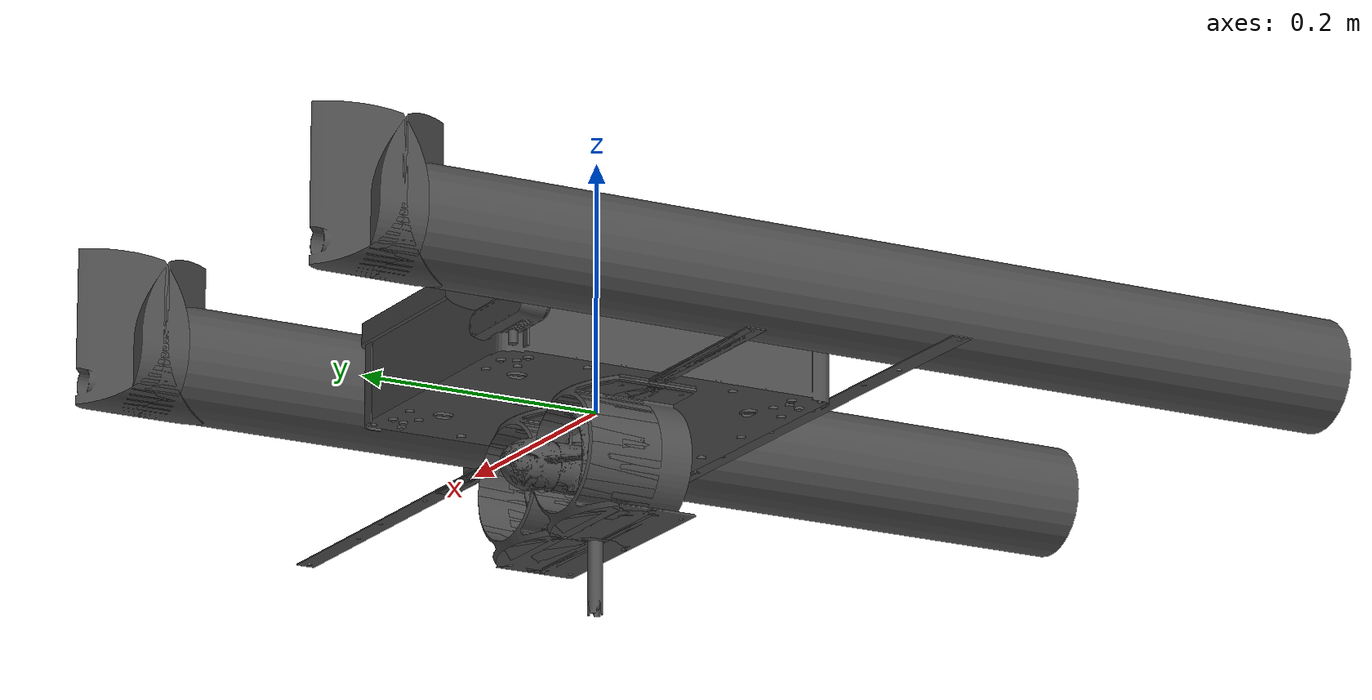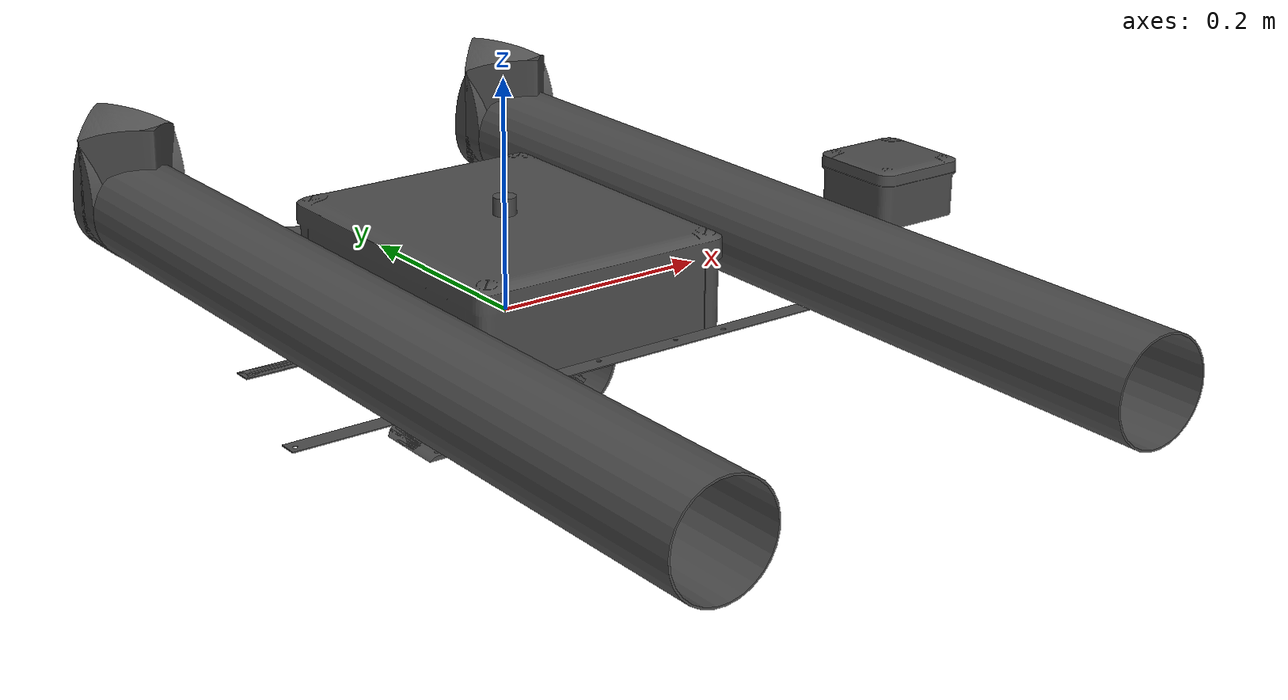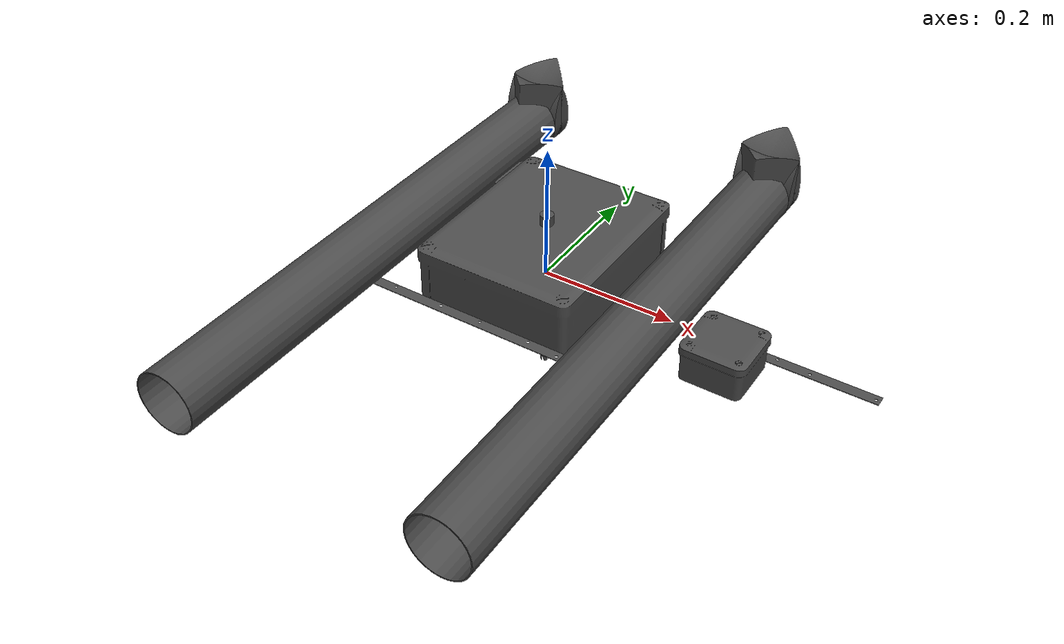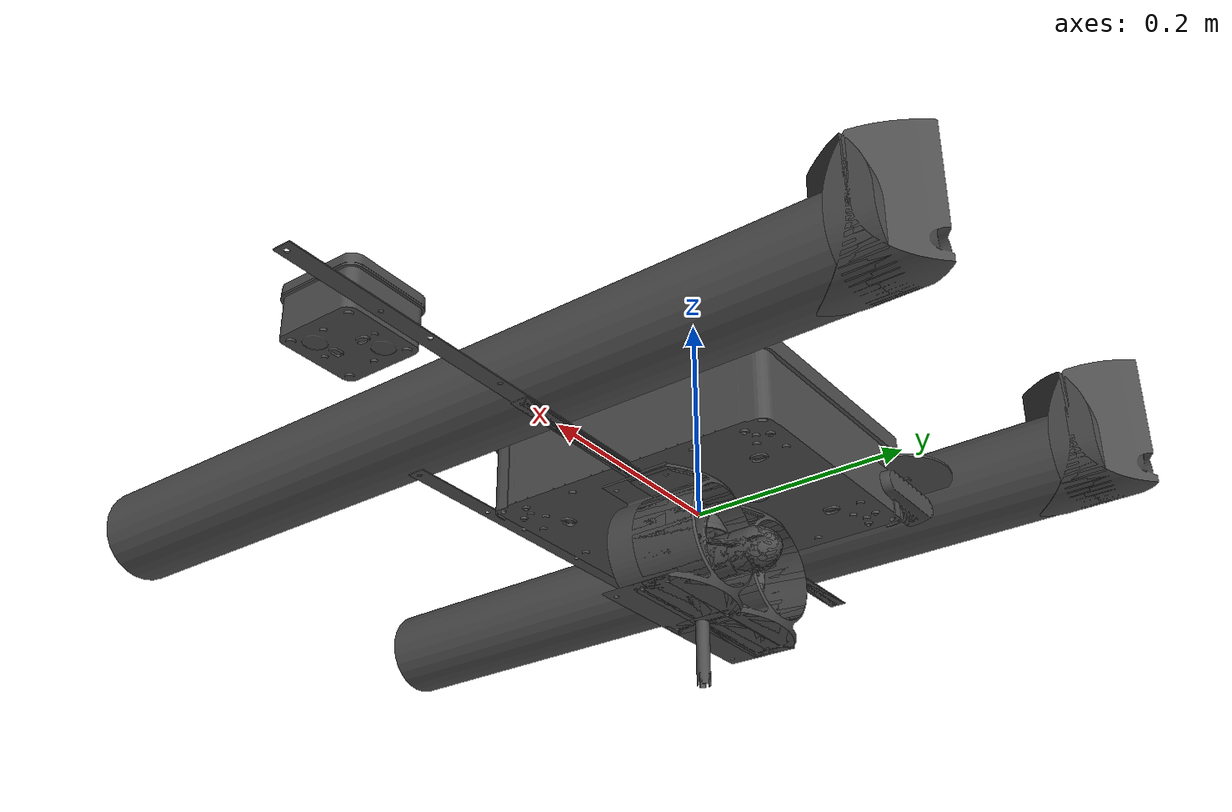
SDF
<sdf version='1.6'>
  <model name='boat_minis'>
    <pose>0 0 0.0 0 0 0</pose>
    <link name='base_link'>
      <inertial>
        <pose >-3.9789257506472566e-11 1.012143865601373e-09 0.04330489141524868 0 0 0</pose>
        <mass>4.78319696007218</mass>
        <inertia>
          <ixx>0.051347</ixx>
          <ixy>0</ixy>
          <ixz>0</ixz>
          <iyy>0.038498</iyy>
          <iyz>0</iyz>
          <izz>0.078462</izz>
        </inertia>
      </inertial>

      <visual name='base_link_visual'>
        <pose>0 0 0.0 0 0 0</pose>
        <geometry>
          <mesh>
            <scale>0.001 0.001 0.001</scale>
            <uri>model://boat_minis/meshes/base_link.stl</uri>
          </mesh>
        </geometry>
        <material>
          <script>
            <name>Gazebo/DarkGrey</name>
            <uri>__default__</uri>
          </script>
        </material>
      </visual>

      <collision name='base_link_collision'>
        <pose>0 0 0.0 0 0 0</pose>
        <geometry>
          <mesh>
            <scale>0.001 0.001 0.001</scale>
            <uri>model://boat_minis/meshes/base_link.stl</uri>
          </mesh>
        </geometry>
      </collision>
    </link>

<link name="v2_support_beam02_1">
  <inertial>
  <pose>2.3447910280083307e-15 -1.473600655507723e-05 -0.0005000000000000247 0 0 0</pose>
    <mass>0.061888018579604125</mass>
  <inertia>
          <ixx>1e-06</ixx>
          <ixy>-0.0</ixy>
          <ixz>-0.0</ixz>
          <iyy>0.001286</iyy>
          <iyz>-0.0</iyz>
          <izz>0.001288</izz>
        </inertia>
  </inertial>
  <visual name="v2_support_beam02_1_visual">
  <pose>0.0 -0.1275 0.0021 0 0 0</pose>
    <geometry>
      <mesh>
          <scale>0.001 0.001 0.001</scale>
          <uri>model://boat_minis/meshes/v2_support_beam02_1.stl</uri>
      </mesh>

    </geometry>
    <material>
          <script>
            <name>Gazebo/DarkGrey</name>
            <uri>__default__</uri>
          </script>
        </material>
  </visual>
  <collision name="v2_support_beam02_1_collision">
  <pose>0.0 -0.1275 0.0021 0 0 0</pose>
    <geometry>
      <mesh>
          <scale>0.001 0.001 0.001</scale>
          <uri>model://boat_minis/meshes/v2_support_beam02_1.stl</uri>
      </mesh>
    </geometry>
  </collision>
</link>

<link name="v2_support_beam04_1">
  <inertial>

   <pose>-2.3447910280083307e-15 1.4736006555132741e-05 -0.0005000000000000156 0 0 0</pose>
   <mass>0.061888018579604125</mass>

  <inertia>
          <ixx>1e-06</ixx>
          <ixy>-0.0</ixy>
          <ixz>-0.0</ixz>
          <iyy>0.001286</iyy>
          <iyz>-0.0</iyz>
          <izz>0.001288</izz>
        </inertia>

  </inertial>
  <visual name="v2_support_beam04_1_visual">
     <pose>0.0 0.1275 0.0021 0 0 0</pose>
    <geometry>
      <mesh>
          <scale>0.001 0.001 0.001</scale>
          <uri>model://boat_minis/meshes/v2_support_beam04_1.stl</uri>
      </mesh>
    </geometry>
     <material>
          <script>
            <name>Gazebo/DarkGrey</name>
            <uri>__default__</uri>
          </script>
        </material>
  </visual>
  <collision name="v2_support_beam04_1_collision">
    <pose>0.0 0.1275 0.0021 0 0 0</pose>
    <geometry>
      <mesh>
          <scale>0.001 0.001 0.001</scale>
          <uri>model://boat_minis/meshes/v2_support_beam04_1.stl</uri>
      </mesh>
    </geometry>
  </collision>
</link>

<link name="floater_support01_2">
  <inertial>

    <pose>-0.04400002005196085 0.02166892426273051 -0.05123833632081263 0 0 0</pose>
     <mass>0.7563645564303094</mass>

  <inertia>
          <ixx>0.001539</ixx>
          <ixy>-0.0</ixy>
          <ixz>-0.0</ixz>
          <iyy>0.002042</iyy>
          <iyz>3e-06</iyz>
          <izz>0.000929</izz>
        </inertia>

  </inertial>
  <visual name="floater_support01_2_visual">

    <pose>-0.243899 -0.1265 0.0031 0 0 0</pose>
    <geometry>
      <mesh>
          <scale>0.001 0.001 0.001</scale>
          <uri>model://boat_minis/meshes/floater_support01_2.stl</uri>
      </mesh>
    </geometry>
     <material>
          <script>
            <name>Gazebo/DarkGrey</name>
            <uri>__default__</uri>
          </script>
        </material>
  </visual>
  <collision name="floater_support01_2_collision">

    <pose>-0.243899 -0.1265 0.0031 0 0 0</pose>
    <geometry>
      <mesh>
          <scale>0.001 0.001 0.001</scale>
          <uri>model://boat_minis/meshes/floater_support01_2.stl</uri>
      </mesh>
    </geometry>
  </collision>
</link>

<link name="floater_support01_1">
  <inertial>
   <pose>0.04400002097690628 0.021668924262728262 -0.05123833632081288 0 0 0</pose>
       <mass>0.7563645564303094</mass>

  <inertia>
          <ixx>0.001539</ixx>
          <ixy>-0.0</ixy>
          <ixz>-0.0</ixz>
          <iyy>0.002042</iyy>
          <iyz>3e-06</iyz>
          <izz>0.000929</izz>
        </inertia>

  </inertial>
  <visual name="floater_support01_1_visual">
    <pose>0.243899 -0.1265 0.0031 0 0 0</pose>
    <geometry>
      <mesh>
          <scale>0.001 0.001 0.001</scale>
          <uri>model://boat_minis/meshes/floater_support01_1.stl</uri>
      </mesh>
    </geometry>
        <material>
          <script>
            <name>Gazebo/DarkGrey</name>
            <uri>__default__</uri>
          </script>
        </material>
  </visual>
  <collision name="floater_support01_1_collision">
    <pose>0.243899 -0.1265 0.0031 0 0 0</pose>
    <geometry>
      <mesh>
          <scale>0.001 0.001 0.001</scale>
          <uri>model://boat_minis/meshes/floater_support01_1.stl</uri>
      </mesh>
    </geometry>
  </collision>
</link>

<link name="floater_support01_3">
  <inertial>
    <pose>0.0440000209769065 -0.004331075498855308 -0.05123833632081256 0 0 0</pose>
         <mass>0.7563645564303094</mass>

  <inertia>
          <ixx>0.001539</ixx>
          <ixy>-0.0</ixy>
          <ixz>-0.0</ixz>
          <iyy>0.002042</iyy>
          <iyz>3e-06</iyz>
          <izz>0.000929</izz>
        </inertia>

  </inertial>
  <visual name="floater_support01_3_visual">
    <pose>0.243899 0.1265 0.0031 0 0 0</pose>
    <geometry>
      <mesh>
          <scale>0.001 0.001 0.001</scale>
          <uri>model://boat_minis/meshes/floater_support01_3.stl</uri>
      </mesh>
    </geometry>
    <material>
          <script>
            <name>Gazebo/DarkGrey</name>
            <uri>__default__</uri>
          </script>
        </material>
  </visual>
  <collision name="floater_support01_3_collision">
    <pose>0.243899 0.1265 0.0031 0 0 0</pose>

    <geometry>
      <mesh>
          <scale>0.001 0.001 0.001</scale>
          <uri>model://boat_minis/meshes/floater_support01_3.stl</uri>
      </mesh>
    </geometry>
  </collision>
</link>

<link name="floater_support01_4">
  <inertial>
<pose>-0.04400002005196085 -0.004331075498853115 -0.05123833632081288 0 0 0</pose>
           <mass>0.7563645564303094</mass>

  <inertia>
          <ixx>0.001539</ixx>
          <ixy>-0.0</ixy>
          <ixz>-0.0</ixz>
          <iyy>0.002042</iyy>
          <iyz>3e-06</iyz>
          <izz>0.000929</izz>
        </inertia>

  </inertial>
  <visual name="floater_support01_4_visual">
    <pose>-0.243899 0.1265 0.0031 0 0 0</pose>
    <geometry>
      <mesh>
          <scale>0.001 0.001 0.001</scale>
          <uri>model://boat_minis/meshes/floater_support01_4.stl</uri>
      </mesh>
    </geometry>
        <material>
          <script>
            <name>Gazebo/DarkGrey</name>
            <uri>__default__</uri>
          </script>
        </material>
  </visual>

  <collision name="floater_support01_4_collision">
    <pose>-0.243899 0.1265 0.0031 0 0 0</pose>
    <geometry>
      <mesh>
          <scale>0.001 0.001 0.001</scale>
          <uri>model://boat_minis/meshes/floater_support01_4.stl</uri>
      </mesh>
    </geometry>
  </collision>
</link>

<link name="v2_support_beam04_2">
  <inertial>
    <pose>0.24389900000000234 0.000985263993444896 0.0004999999999996999 0 0 0</pose>
    <mass>0.061888018579604125</mass>

  <inertia>
          <ixx>1e-06</ixx>
          <ixy>-0.0</ixy>
          <ixz>-0.0</ixz>
          <iyy>0.001286</iyy>
          <iyz>3e-06</iyz>
          <izz>0.001288</izz>
        </inertia>

  </inertial>
  <visual name="v2_support_beam04_2_visual">
    <pose>0.243899 -0.1525 0.0031 0 0 0</pose>
    <geometry>
      <mesh>
          <scale>0.001 0.001 0.001</scale>
          <uri>model://boat_minis/meshes/v2_support_beam04_2.stl</uri>
      </mesh>
    </geometry>
    <material>
          <script>
            <name>Gazebo/DarkGrey</name>
            <uri>__default__</uri>
          </script>
        </material>
  </visual>
  <collision name="v2_support_beam04_2_collision">
    <pose>0.243899 -0.1525 0.0031 0 0 0</pose>
    <geometry>
      <mesh>
          <scale>0.001 0.001 0.001</scale>
          <uri>model://boat_minis/meshes/v2_support_beam04_2.stl</uri>
      </mesh>
    </geometry>
  </collision>
</link>

<link name="guincho_1">
  <inertial>
   <pose>0.3249851174364672 -0.11404013695896392 0.08048686430368082 0 0 0</pose>
      <mass>0.5746024533277414</mass>

  <inertia>
          <ixx>0.00071</ixx>
          <ixy>-2e-06</ixy>
          <ixz>1e-06</ixz>
          <iyy>0.000707</iyy>
          <iyz>2e-06</iyz>
          <izz>0.001004</izz>
        </inertia>

  </inertial>
  <visual name="guincho_1_visual">
    <pose>0.324899 -0.307 0.056856 0 0 0</pose>
    <geometry>
      <mesh>
          <scale>0.001 0.001 0.001</scale>
          <uri>model://boat_minis/meshes/guincho_1.stl</uri>
      </mesh>
    </geometry>
       <material>
          <script>
            <name>Gazebo/DarkGrey</name>
            <uri>__default__</uri>
          </script>
        </material>
  </visual>
  <collision name="guincho_1_collision">
    <pose>0.324899 -0.307 0.056856 0 0 0</pose>
    <geometry>
      <mesh>
          <scale>0.001 0.001 0.001</scale>
          <uri>model://boat_minis/meshes/guincho_1.stl</uri>
      </mesh>
    </geometry>
  </collision>
</link>

<link name="v2_support_beam04_3">
  <inertial>
  <pose>-0.0442499999999973 -0.15060015832347387 0.0036999999999999846 0 0 0</pose>
        <mass>0.061888018579604125</mass>

  <inertia>
          <ixx>1e-06</ixx>
          <ixy>-0.0</ixy>
          <ixz>-0.0</ixz>
          <iyy>0.001286</iyy>
          <iyz>0.0</iyz>
          <izz>0.001288</izz>
        </inertia>

  </inertial>
  <visual name="v2_support_beam04_3_visual">
    <pose>-0.04425 -0.382756 0.0063 0 0 0</pose>
    <geometry>
      <mesh>
          <scale>0.001 0.001 0.001</scale>
          <uri>model://boat_minis/meshes/v2_support_beam04_3.stl</uri>
      </mesh>
    </geometry>
    <material>
          <script>
            <name>Gazebo/DarkGrey</name>
            <uri>__default__</uri>
          </script>
        </material>
  </visual>
  <collision name="v2_support_beam04_3_collision">
    <pose>-0.04425 -0.382756 0.0063 0 0 0</pose>
    <geometry>
      <mesh>
          <scale>0.001 0.001 0.001</scale>
          <uri>model://boat_minis/meshes/v2_support_beam04_3.stl</uri>
      </mesh>
    </geometry>
  </collision>
</link>

<link name="floater_support01_6">
  <inertial>
    <pose>-0.0440000200519636 0.021668501945811686 -0.051238336320810596 0 0 0</pose>
          <mass>0.7563645564303094</mass>

  <inertia>
          <ixx>0.001539</ixx>
          <ixy>-0.0</ixy>
          <ixz>-0.0</ixz>
          <iyy>0.002042</iyy>
          <iyz>3e-06</iyz>
          <izz>0.000929</izz>
        </inertia>

  </inertial>
  <visual name="floater_support01_6_visual">

    <pose>-0.243899 -0.231171 0.0031 0 0 0</pose>
    <geometry>
      <mesh>
          <scale>0.001 0.001 0.001</scale>
          <uri>model://boat_minis/meshes/floater_support01_6.stl</uri>
      </mesh>
    </geometry>
        <material>
          <script>
            <name>Gazebo/DarkGrey</name>
            <uri>__default__</uri>
          </script>
        </material>
  </visual>
  <collision name="floater_support01_6_collision">
    <pose>-0.243899 -0.231171 0.0031 0 0 0</pose>
    <geometry>
      <mesh>
          <scale>0.001 0.001 0.001</scale>
          <uri>model://boat_minis/meshes/floater_support01_6.stl</uri>
      </mesh>
    </geometry>
  </collision>
</link>

<link name="floater_support01_5">
  <inertial>
  <pose>0.04400002097690925 0.02166850194580952 -0.05123833632081053 0 0 0</pose>
     <mass>0.7563645564303094</mass>

  <inertia>
          <ixx>0.001539</ixx>
          <ixy>-0.0</ixy>
          <ixz>-0.0</ixz>
          <iyy>0.002042</iyy>
          <iyz>3e-06</iyz>
          <izz>0.000929</izz>
        </inertia>

  </inertial>
  <visual name="floater_support01_5_visual">
    <pose>0.243899 -0.231171 0.0031 0 0 0</pose>

    <geometry>
      <mesh>
          <scale>0.001 0.001 0.001</scale>
          <uri>model://boat_minis/meshes/floater_support01_5.stl</uri>
      </mesh>
    </geometry>
            <material>
          <script>
            <name>Gazebo/DarkGrey</name>
            <uri>__default__</uri>
          </script>
        </material>
  </visual>
  <collision name="floater_support01_5_collision">
    <pose>0.243899 -0.231171 0.0031 0 0 0</pose>
    <geometry>
      <mesh>
          <scale>0.001 0.001 0.001</scale>
          <uri>model://boat_minis/meshes/floater_support01_5.stl</uri>
      </mesh>
    </geometry>
  </collision>
</link>

<link name="floater_1">
  <inertial>
  <pose>0.19989902051443345 -0.12950000011921006 0.054755793982614126 0 0 0</pose>
  <mass>2.9615504918866855</mass>

  <inertia>
          <ixx>0.160837</ixx>
          <ixy>-0.0</ixy>
          <ixz>-0.0</ixz>
          <iyy>0.005775</iyy>
          <iyz>0.0</iyz>
          <izz>0.160837</izz>
        </inertia>

  </inertial>
  <visual name="floater_1_visual">
    <pose>0.399798 -0.239 0.109512 0 0 0</pose>
    <geometry>
      <mesh>
          <scale>0.001 0.001 0.001</scale>
          <uri>model://boat_minis/meshes/floater_1.stl</uri>
      </mesh>
    </geometry>
    <material>
          <script>
            <name>Gazebo/DarkGrey</name>
            <uri>__default__</uri>
          </script>
        </material>
  </visual>
  <collision name="floater_1_collision">
    <pose>0.399798 -0.239 0.109512 0 0 0</pose>
    <geometry>
      <mesh>
          <scale>0.001 0.001 0.001</scale>
          <uri>model://boat_minis/meshes/floater_1.stl</uri>
      </mesh>
    </geometry>
  </collision>
</link>

<link name="floater_2">
  <inertial>
  <pose>-0.19989902051443334 -0.12950000011920781 0.05475579398261437 0 0 0</pose>
    <mass>2.9615504918866855</mass>

  <inertia>
          <ixx>0.160837</ixx>
          <ixy>-0.0</ixy>
          <ixz>-0.0</ixz>
          <iyy>0.005775</iyy>
          <iyz>0.0</iyz>
          <izz>0.160837</izz>
        </inertia>

  </inertial>
  <visual name="floater_2_visual">
    <pose>-0.399798 -0.239 0.109512 0 0 0</pose>
    <geometry>
      <mesh>
          <scale>0.001 0.001 0.001</scale>
          <uri>model://boat_minis/meshes/floater_2.stl</uri>
      </mesh>
    </geometry>
    <material>
          <script>
            <name>Gazebo/DarkGrey</name>
            <uri>__default__</uri>
          </script>
        </material>
  </visual>
  <collision name="floater_2_collision">
    <pose>-0.399798 -0.239 0.109512 0 0 0</pose>
    <geometry>
      <mesh>
          <scale>0.001 0.001 0.001</scale>
          <uri>model://boat_minis/meshes/floater_2.stl</uri>
      </mesh>
    </geometry>
  </collision>
</link>

<link name="floater_tip_1">
  <inertial>
   <pose>0.19989863138049022 0.29684046360499017 0.07168582687358308 0 0 0</pose>
    <mass>2.0270242584607208</mass>

  <inertia>
          <ixx>0.002845</ixx>
          <ixy>-0.0</ixy>
          <ixz>-0.0</ixz>
          <iyy>0.003215</iyy>
          <iyz>-0.000486</iyz>
          <izz>0.001827</izz>
        </inertia>

  </inertial>
  <visual name="floater_tip_1_visual">
    <pose>0.399798 -0.219 0.109512 0 0 0</pose>
    <geometry>
      <mesh>
          <scale>0.001 0.001 0.001</scale>
          <uri>model://boat_minis/meshes/floater_tip_1.stl</uri>
      </mesh>
    </geometry>
        <material>
          <script>
            <name>Gazebo/DarkGrey</name>
            <uri>__default__</uri>
          </script>
        </material>
  </visual>
  <collision name="floater_tip_1_collision">
    <pose>0.399798 -0.219 0.109512 0 0 0</pose>
    <geometry>
      <mesh>
          <scale>0.001 0.001 0.001</scale>
          <uri>model://boat_minis/meshes/floater_tip_1.stl</uri>
      </mesh>
    </geometry>
  </collision>
</link>

<link name="floater_tip_2">
  <inertial>
  <pose>-0.1998994096483766 0.2968404636049925 0.0716858268735833 0 0 0</pose>

                  <mass>2.0270242584607208</mass>

  <inertia>
          <ixx>0.002845</ixx>
          <ixy>-0.0</ixy>
          <ixz>-0.0</ixz>
          <iyy>0.003215</iyy>
          <iyz>-0.000486</iyz>
          <izz>0.001827</izz>
        </inertia>

  </inertial>
  <visual name="floater_tip_2_visual">

    <pose>-0.399798 -0.219 0.109512 0 0 0</pose>
    <geometry>
      <mesh>
          <scale>0.001 0.001 0.001</scale>
          <uri>model://boat_minis/meshes/floater_tip_2.stl</uri>
      </mesh>
    </geometry>
    <material>
          <script>
            <name>Gazebo/DarkGrey</name>
            <uri>__default__</uri>
          </script>
        </material>
  </visual>
  <collision name="floater_tip_2_collision">
    <pose>-0.399798 -0.219 0.109512 0 0 0</pose>
    <geometry>
      <mesh>
          <scale>0.001 0.001 0.001</scale>
          <uri>model://boat_minis/meshes/floater_tip_2.stl</uri>
      </mesh>
    </geometry>
  </collision>
</link>

<link name="floater_tipV2_1">
  <inertial>

  <pose>0.19989856932180552 0.28402369233678276 0.07065653475120828 0 0 0</pose>
                    <mass>2.074862155631664</mass>

  <inertia>
          <ixx>0.002971</ixx>
          <ixy>-0.0</ixy>
          <ixz>-0.0</ixz>
          <iyy>0.003311</iyy>
          <iyz>0.000474</iyz>
          <izz>0.001861</izz>
        </inertia>

  </inertial>
  <visual name="floater_tipV2_1_visual">
    <pose>0.399798 0.581 0.109512 0 0 0</pose>
    <geometry>
      <mesh>
          <scale>0.001 0.001 0.001</scale>
          <uri>model://boat_minis/meshes/floater_tipV2_1.stl</uri>
      </mesh>
    </geometry>
    <material>
          <script>
            <name>Gazebo/DarkGrey</name>
            <uri>__default__</uri>
          </script>
        </material>
  </visual>
  <collision name="floater_tipV2_1_collision">
    <pose>0.399798 0.581 0.109512 0 0 0</pose>
    <geometry>
      <mesh>
          <scale>0.001 0.001 0.001</scale>
          <uri>model://boat_minis/meshes/floater_tipV2_1.stl</uri>
      </mesh>
    </geometry>
  </collision>
</link>

<link name="floater_tipV2_2">
  <inertial>
  <pose>-0.1998994717070613 0.28402369233678504 0.07065653475120853 0 0 0</pose>

    <mass>2.074862155631664</mass>

  <inertia>
          <ixx>0.002971</ixx>
          <ixy>-0.0</ixy>
          <ixz>-0.0</ixz>
          <iyy>0.003311</iyy>
          <iyz>0.000474</iyz>
          <izz>0.001861</izz>
        </inertia>

  </inertial>
  <visual name="floater_tipV2_2_visual">
    <pose>-0.399798 0.581 0.109512 0 0 0</pose>
    <geometry>
      <mesh>
          <scale>0.001 0.001 0.001</scale>
          <uri>model://boat_minis/meshes/floater_tipV2_2.stl</uri>
      </mesh>
    </geometry>
    <material>
          <script>
            <name>Gazebo/DarkGrey</name>
            <uri>__default__</uri>
          </script>
        </material>
  </visual>
  <collision name="floater_tipV2_2_collision">
    <pose>-0.399798 0.581 0.109512 0 0 0</pose>
    <geometry>
      <mesh>
          <scale>0.001 0.001 0.001</scale>
          <uri>model://boat_minis/meshes/floater_tipV2_2.stl</uri>
      </mesh>
    </geometry>
  </collision>
</link>

<link name="Component9_1">
  <inertial>

    <pose>0.0004040931901038991 0.00863142040130871 0.005093935328668137 0 0 0</pose>

    <mass>0.19481143525514483</mass>

  <inertia>
          <ixx>2.2e-05</ixx>
          <ixy>2e-06</ixy>
          <ixz>-0.0</ixz>
          <iyy>0.000146</iyy>
          <iyz>-1e-06</iyz>
          <izz>0.000155</izz>
        </inertia>

  </inertial>
  <visual name="Component9_1_visual">
     <pose>-0.199899 0.1595 0.0031 0 0 0</pose>
    <geometry>
      <mesh>
          <scale>0.001 0.001 0.001</scale>
          <uri>model://boat_minis/meshes/Component9_1.stl</uri>
      </mesh>
    </geometry>
    <material>
          <script>
            <name>Gazebo/DarkGrey</name>
            <uri>__default__</uri>
          </script>
        </material>
  </visual>
  <collision name="Component9_1_collision">
  <pose>-0.199899 0.1595 0.0031 0 0 0</pose>
    <geometry>
      <mesh>
          <scale>0.001 0.001 0.001</scale>
          <uri>model://boat_minis/meshes/Component9_1.stl</uri>
      </mesh>
    </geometry>
  </collision>
</link>

<link name="Component10_1">
  <inertial>
    <pose>0.006999979485432295 9.834751346637916e-10 0.014868008543912313 0 0 0</pose>
      <mass>0.07060990968818463</mass>

  <inertia>
          <ixx>8e-06</ixx>
          <ixy>-0.0</ixy>
          <ixz>-0.0</ixz>
          <iyy>8e-06</iyy>
          <iyz>-0.0</iyz>
          <izz>5e-06</izz>
        </inertia>

  </inertial>
  <visual name="Component10_1_visual">
    <pose>-0.192899 0.1485 -0.0184 0 0 0</pose>

    <geometry>
      <mesh>
          <scale>0.001 0.001 0.001</scale>
          <uri>model://boat_minis/meshes/Component10_1.stl</uri>
      </mesh>
    </geometry>
        <material>
          <script>
            <name>Gazebo/DarkGrey</name>
            <uri>__default__</uri>
          </script>
        </material>
  </visual>
  <collision name="Component10_1_collision">
    <pose>-0.192899 0.1485 -0.0184 0 0 0</pose>
    <geometry>
      <mesh>
          <scale>0.001 0.001 0.001</scale>
          <uri>model://boat_minis/meshes/Component10_1.stl</uri>
      </mesh>
    </geometry>
  </collision>
</link>

<link name="gps_antenna_v1_1">
  <inertial>
   <pose>-2.051443340200798e-08 9.834766612204504e-10 0.049999999999999836 0 0 0</pose>
        <mass>0.24661502330679874</mass>

  <inertia>
          <ixx>0.000212</ixx>
          <ixy>-0.0</ixy>
          <ixz>-0.0</ixz>
          <iyy>0.000212</iyy>
          <iyz>-0.0</iyz>
          <izz>1.2e-05</izz>
        </inertia>

  </inertial>
  <visual name="gps_antenna_v1_1_visual">
     <pose>-0.199899 0.1485 -0.0304 0 0 0</pose>
    <geometry>
      <mesh>
          <scale>0.001 0.001 0.001</scale>
          <uri>model://boat_minis/meshes/gps_antenna_v1_1.stl</uri>
      </mesh>
    </geometry>
    <material>
          <script>
            <name>Gazebo/DarkGrey</name>
            <uri>__default__</uri>
          </script>
        </material>
  </visual>
  <collision name="gps_antenna_v1_1_collision">
    <pose>-0.199899 0.1485 -0.0304 0 0 0</pose>
    <geometry>
      <mesh>
          <scale>0.001 0.001 0.001</scale>
          <uri>model://boat_minis/meshes/gps_antenna_v1_1.stl</uri>
      </mesh>
    </geometry>
  </collision>
</link>

<link name="UBLOX_ANN-MB-00_GNSS_ANTENNA_v2_1">
  <inertial>
  <pose>-1.4068622794516372e-08 0.00047145769736475773 0.010274547438117343 0 0 0</pose>

    <mass>0.5455610936895873</mass>

  <inertia>
          <ixx>0.000156</ixx>
          <ixy>-0.0</ixy>
          <ixz>-0.0</ixz>
          <iyy>0.000171</iyy>
          <iyz>-0.0</iyz>
          <izz>0.000283</izz>
        </inertia>

  </inertial>
  <visual name="UBLOX_ANN-MB-00_GNSS_ANTENNA_v2_1_visual">
    <pose>-0.199899 0.1485 -0.1304 0 0 0</pose>
    <geometry>
      <mesh>
          <scale>0.001 0.001 0.001</scale>
          <uri>model://boat_minis/meshes/UBLOX_ANN-MB-00_GNSS_ANTENNA_v2_1.stl</uri>
      </mesh>
    </geometry>
    <material>
          <script>
            <name>Gazebo/DarkGrey</name>
            <uri>__default__</uri>
          </script>
        </material>
  </visual>
  <collision name="UBLOX_ANN-MB-00_GNSS_ANTENNA_v2_1_collision">
    <pose>-0.199899 0.1485 -0.1304 0 0 0</pose>
    <geometry>
      <mesh>
          <scale>0.001 0.001 0.001</scale>
          <uri>model://boat_minis/meshes/UBLOX_ANN-MB-00_GNSS_ANTENNA_v2_1.stl</uri>
      </mesh>
    </geometry>
  </collision>
</link>

<link name="floater_bottom_1">
  <inertial>
    <pose>0.044000020514445654 0.018820846713502815 -0.0024309423097564065 0 0 0</pose>
     <mass>0.20416393207732336</mass>

  <inertia>
          <ixx>4.7e-05</ixx>
          <ixy>-0.0</ixy>
          <ixz>-0.0</ixz>
          <iyy>0.000169</iyy>
          <iyz>-0.0</iyz>
          <izz>0.000215</izz>
        </inertia>

  </inertial>
  <visual name="floater_bottom_1_visual">
    <pose>0.243899 0.1525 0.105756 0 0 0</pose>
    <geometry>
      <mesh>
          <scale>0.001 0.001 0.001</scale>
          <uri>model://boat_minis/meshes/floater_bottom_1.stl</uri>
      </mesh>
    </geometry>
    <material>
          <script>
            <name>Gazebo/DarkGrey</name>
            <uri>__default__</uri>
          </script>
        </material>
  </visual>
  <collision name="floater_bottom_1_collision">
    <pose>0.243899 0.1525 0.105756 0 0 0</pose>
    <geometry>
      <mesh>
          <scale>0.001 0.001 0.001</scale>
          <uri>model://boat_minis/meshes/floater_bottom_1.stl</uri>
      </mesh>
    </geometry>
  </collision>
</link>

<link name="floater_bottom_2">
  <inertial>
   <pose>-0.04400002051442162 0.01882084671350509 -0.0024309423097567256 0 0 0</pose>
   <mass>0.20416393207732336</mass>

  <inertia>
          <ixx>4.7e-05</ixx>
          <ixy>-0.0</ixy>
          <ixz>-0.0</ixz>
          <iyy>0.000169</iyy>
          <iyz>-0.0</iyz>
          <izz>0.000215</izz>
        </inertia>

  </inertial>
  <visual name="floater_bottom_2_visual">
    <pose>-0.243899 0.1525 0.105756 0 0 0</pose>
    <geometry>
      <mesh>
          <scale>0.001 0.001 0.001</scale>
          <uri>model://boat_minis/meshes/floater_bottom_2.stl</uri>
      </mesh>
    </geometry>
    <material>
          <script>
            <name>Gazebo/DarkGrey</name>
            <uri>__default__</uri>
          </script>
        </material>
  </visual>
  <collision name="floater_bottom_2_collision">
    <pose>-0.243899 0.1525 0.105756 0 0 0</pose>
    <geometry>
      <mesh>
          <scale>0.001 0.001 0.001</scale>
          <uri>model://boat_minis/meshes/floater_bottom_2.stl</uri>
      </mesh>
    </geometry>
  </collision>
</link>

<link name="Component14_1">
  <inertial>

    <pose>-0.04399978974292221 -0.006709047132329032 -0.004804556282958991 0 0 0</pose>
  <mass>0.24755974026731303</mass>

  <inertia>
          <ixx>6.2e-05</ixx>
          <ixy>-0.0</ixy>
          <ixz>-0.0</ixz>
          <iyy>0.000179</iyy>
          <iyz>1e-06</iyz>
          <izz>0.000224</izz>
        </inertia>

  </inertial>
  <visual name="Component14_1_visual">
    <pose>-0.243899 -0.1525 0.105756 0 0 0</pose>
    <geometry>
      <mesh>
          <scale>0.001 0.001 0.001</scale>
          <uri>model://boat_minis/meshes/Component14_1.stl</uri>
      </mesh>
    </geometry>
        <material>
          <script>
            <name>Gazebo/DarkGrey</name>
            <uri>__default__</uri>
          </script>
        </material>
  </visual>
  <collision name="Component14_1_collision">
    <pose>-0.243899 -0.1525 0.105756 0 0 0</pose>
    <geometry>
      <mesh>
          <scale>0.001 0.001 0.001</scale>
          <uri>model://boat_minis/meshes/Component14_1.stl</uri>
      </mesh>
    </geometry>
  </collision>
</link>

<link name="PING-M-BASE-R2-PUBLIC_1">
  <inertial>
    <pose>0.008485760852353447 0.008288741486511098 -0.008686156198827538 0 0 0</pose>

   <mass>0.11893862396722066</mass>

  <inertia>
          <ixx>2.9e-05</ixx>
          <ixy>-0.0</ixy>
          <ixz>-0.0</ixz>
          <iyy>2.9e-05</iyy>
          <iyz>-0.0</iyz>
          <izz>4.1e-05</izz>
        </inertia>

  </inertial>
  <visual name="PING-M-BASE-R2-PUBLIC_1_visual">
    <pose>-0.191413 -0.138439 0.127756 0 0 0</pose>
    <geometry>
      <mesh>
          <scale>0.001 0.001 0.001</scale>
          <uri>model://boat_minis/meshes/PING-M-BASE-R2-PUBLIC_1.stl</uri>
      </mesh>
    </geometry>
     <material>
          <script>
            <name>Gazebo/DarkGrey</name>
            <uri>__default__</uri>
          </script>
        </material>
  </visual>
  <collision name="PING-M-BASE-R2-PUBLIC_1_collision">
    <pose>-0.191413 -0.138439 0.127756 0 0 0</pose>
    <geometry>
      <mesh>
          <scale>0.001 0.001 0.001</scale>
          <uri>model://boat_minis/meshes/PING-M-BASE-R2-PUBLIC_1.stl</uri>
      </mesh>
    </geometry>
  </collision>
</link>

<link name="PING-M-HEAD-R3-PUBLIC_1">
  <inertial>

    <pose>-2.3914764751831186e-07 4.1160944710960656e-07 0.0012722999947316627 0 0 0</pose>
    <mass>0.17698655934000346</mass>

  <inertia>
          <ixx>2.5e-05</ixx>
          <ixy>-0.0</ixy>
          <ixz>-0.0</ixz>
          <iyy>2.5e-05</iyy>
          <iyz>-0.0</iyz>
          <izz>4.4e-05</izz>
        </inertia>

  </inertial>
  <visual name="PING-M-HEAD-R3-PUBLIC_1_visual">
     <pose>-0.199899 -0.146924 0.156756 0 0 0</pose>
    <geometry>
      <mesh>
          <scale>0.001 0.001 0.001</scale>
          <uri>model://boat_minis/meshes/PING-M-HEAD-R3-PUBLIC_1.stl</uri>
      </mesh>
    </geometry>
    <material>
          <script>
            <name>Gazebo/DarkGrey</name>
            <uri>__default__</uri>
          </script>
        </material>
  </visual>
  <collision name="PING-M-HEAD-R3-PUBLIC_1_collision">
    <pose>-0.199899 -0.146924 0.156756 0 0 0</pose>
    <geometry>
      <mesh>
          <scale>0.001 0.001 0.001</scale>
          <uri>model://boat_minis/meshes/PING-M-HEAD-R3-PUBLIC_1.stl</uri>
      </mesh>
    </geometry>
  </collision>
</link>

<link name="left_propeller_link">
  <inertial>
  <pose>4.3558450485425837e-07 0.01865483590374345 -0.04851004598116235 0 0 0</pose>
      <mass>1.526567359638535</mass>

  <inertia>
          <ixx>0.001286</ixx>
          <ixy>-0.0</ixy>
          <ixz>-0.0</ixz>
          <iyy>0.001429</iyy>
          <iyz>4e-06</iyz>
          <izz>0.001254</izz>
        </inertia>

  </inertial>
  <visual name="left_propeller_link_visual">
    <pose>-0.199899 0.1544 0.110756 0 0 0</pose>
    <geometry>
      <mesh>
          <scale>0.001 0.001 0.001</scale>
          <uri>model://boat_minis/meshes/T200-ASM-CW-THRUSTER-R1_v1__8__1.stl</uri>
      </mesh>
    </geometry>
      <material>
          <script>
            <name>Gazebo/DarkGrey</name>
            <uri>__default__</uri>
          </script>
        </material>
  </visual>
  <collision name="left_propeller_link_collision">
  <pose>-0.199899 0.1544 0.110756 0 0 0</pose>
    <geometry>
      <mesh>
          <scale>0.001 0.001 0.001</scale>
          <uri>model://boat_minis/meshes/T200-ASM-CW-THRUSTER-R1_v1__8__1.stl</uri>
      </mesh>
    </geometry>
  </collision>
</link>

<link name="right_propeller_link">
  <inertial>
  <pose>4.7661337207460797e-07 0.018654835903741118 -0.0485100459811621 0 0 0</pose>
    <mass>1.526567359638535</mass>

  <inertia>
          <ixx>0.001286</ixx>
          <ixy>-0.0</ixy>
          <ixz>-0.0</ixz>
          <iyy>0.001429</iyy>
          <iyz>4e-06</iyz>
          <izz>0.001254</izz>
        </inertia>

  </inertial>
  <visual name="right_propeller_link_visual">
    <pose>0.199899 0.1544 0.110756 0 0 0</pose>

    <geometry>
      <mesh>
          <scale>0.001 0.001 0.001</scale>
          <uri>model://boat_minis/meshes/T200-ASM-CW-THRUSTER-R1_v1__8__2.stl</uri>
      </mesh>
    </geometry>
    <material>
          <script>
            <name>Gazebo/DarkGrey</name>
            <uri>__default__</uri>
          </script>
        </material>
  </visual>
  <collision name="right_propeller_link_collision">
    <pose>0.199899 0.1544 0.110756 0 0 0</pose>

    <geometry>
      <mesh>
          <scale>0.001 0.001 0.001</scale>
          <uri>model://boat_minis/meshes/T200-ASM-CW-THRUSTER-R1_v1__8__2.stl</uri>
      </mesh>
    </geometry>
  </collision>
</link>

<link name="Intel_Realsense_D435_v4_1">
  <inertial>

   <pose>-0.1214546802696874 0.1366362821108133 0.029630236063533294 0 0 0</pose>
   <mass>0.10620881027228146</mass>

  <inertia>
          <ixx>3.4e-05</ixx>
          <ixy>-0.0</ixy>
          <ixz>-1e-06</ixz>
          <iyy>7.3e-05</iyy>
          <iyz>0.0</iyz>
          <izz>8.6e-05</izz>
        </inertia>

  </inertial>
  <visual name="Intel_Realsense_D435_v4_1_visual">
     <pose>-0.1205 0.0148 -0.082398 0 0 0</pose>
    <geometry>
      <mesh>
          <scale>0.001 0.001 0.001</scale>
          <uri>model://boat_minis/meshes/Intel_Realsense_D435_v4_1.stl</uri>
      </mesh>
    </geometry>
    <material>
          <script>
            <name>Gazebo/DarkGrey</name>
            <uri>__default__</uri>
          </script>
        </material>
  </visual>
  <collision name="Intel_Realsense_D435_v4_1_collision">
    <pose>-0.1205 0.0148 -0.082398 0 0 0</pose>
    <geometry>
      <mesh>
          <scale>0.001 0.001 0.001</scale>
          <uri>model://boat_minis/meshes/Intel_Realsense_D435_v4_1.stl</uri>
      </mesh>
    </geometry>
  </collision>
</link>

<link name="pH-probe__Atlas_Instruments__v4_1">
  <inertial>
   <pose>1.06746795411456e-09 2.8884232827763867e-07 -0.0746339592828971 0 0 0</pose>
  <mass>0.14685250838666847</mass>

  <inertia>
          <ixx>0.0003</ixx>
          <ixy>0.0</ixy>
          <ixz>-1e-06</ixz>
          <iyy>0.0003</iyy>
          <iyz>0.0</iyz>
          <izz>3e-06</izz>
        </inertia>

  </inertial>
  <visual name="pH-probe__Atlas_Instruments__v4_1_visual">
    <pose>0.0 -0.192835 0.0021 0 0 0</pose>
    <geometry>
      <mesh>
          <scale>0.001 0.001 0.001</scale>
          <uri>model://boat_minis/meshes/pH-probe__Atlas_Instruments__v4_1.stl</uri>
      </mesh>
    </geometry>
    <material>
          <script>
            <name>Gazebo/DarkGrey</name>
            <uri>__default__</uri>
          </script>
        </material>
  </visual>
  <collision name="pH-probe__Atlas_Instruments__v4_1_collision">
    <pose>0.0 -0.192835 0.0021 0 0 0</pose>
    <geometry>
      <mesh>
          <scale>0.001 0.001 0.001</scale>
          <uri>model://boat_minis/meshes/pH-probe__Atlas_Instruments__v4_1.stl</uri>
      </mesh>
    </geometry>
  </collision>
</link>

<link name="echo_sounder_kogger_v5_1">
  <inertial>
   <pose>2.0514436177565543e-08 -0.00018270811268406018 -4.0642365764509414e-07 0 0 0</pose>
  <mass>0.06047000371482711</mass>

  <inertia>
          <ixx>4e-06</ixx>
          <ixy>0.0</ixy>
          <ixz>0.0</ixz>
          <iyy>4e-06</iyy>
          <iyz>0.0</iyz>
          <izz>4e-06</izz>
        </inertia>

  </inertial>
  <visual name="echo_sounder_kogger_v5_1_visual">
    <pose>0.199899 -0.5575 0.082445 0 0 0</pose>
    <geometry>
      <mesh>
          <scale>0.001 0.001 0.001</scale>
          <uri>model://boat_minis/meshes/echo_sounder_kogger_v5_1.stl</uri>
      </mesh>
    </geometry>
    <material>
          <script>
            <name>Gazebo/DarkGrey</name>
            <uri>__default__</uri>
          </script>
        </material>
  </visual>
  <collision name="echo_sounder_kogger_v5_1_collision">
    <pose>0.199899 -0.5575 0.082445 0 0 0</pose>
    <geometry>
      <mesh>
          <scale>0.001 0.001 0.001</scale>
          <uri>model://boat_minis/meshes/echo_sounder_kogger_v5_1.stl</uri>
      </mesh>
    </geometry>
  </collision>
</link>

<link name="echo_sounder_kogger_v5_2">
  <inertial>
  <pose>-2.0514430654205995e-08 -0.00018270811268161768 -4.0642365727039387e-07 0 0 0</pose>

  <mass>0.06047000371482711</mass>

  <inertia>
          <ixx>4e-06</ixx>
          <ixy>0.0</ixy>
          <ixz>0.0</ixz>
          <iyy>4e-06</iyy>
          <iyz>0.0</iyz>
          <izz>4e-06</izz>
        </inertia>

  </inertial>
  <visual name="echo_sounder_kogger_v5_2_visual">

    <pose>-0.199899 -0.5575 0.082445 0 0 0</pose>
    <geometry>
      <mesh>
          <scale>0.001 0.001 0.001</scale>
          <uri>model://boat_minis/meshes/echo_sounder_kogger_v5_2.stl</uri>
      </mesh>
    </geometry>
     <material>
          <script>
            <name>Gazebo/DarkGrey</name>
            <uri>__default__</uri>
          </script>
        </material>
  </visual>
  <collision name="echo_sounder_kogger_v5_2_collision">
     <pose>-0.199899 -0.5575 0.082445 0 0 0</pose>
    <geometry>
      <mesh>
          <scale>0.001 0.001 0.001</scale>
          <uri>model://boat_minis/meshes/echo_sounder_kogger_v5_2.stl</uri>
      </mesh>
    </geometry>
  </collision>
</link>

<joint name="Rigid1" type="fixed">
   <pose>0.0 0.1275 -0.0021 0 0 0</pose>
  <child>v2_support_beam02_1</child>
  <parent>base_link</parent>
</joint>

<joint name="Rigid2" type="fixed">
  <pose>0.0 0.1275 -0.0021 0 0 0</pose>
  <child>v2_support_beam04_1</child>
  <parent>base_link</parent>
</joint>

<joint name="Rigid3" type="fixed">
  <pose>0.243899 -0.001 -0.001 0 0 0</pose>
  <child>floater_support01_2</child>
  <parent>v2_support_beam02_1</parent>
</joint>

<joint name="Rigid4" type="fixed">
  <pose>-0.243899 -0.001 -0.001 0 0 0</pose>
    <child>floater_support01_1</child>
  <parent>v2_support_beam02_1</parent>
</joint>

<joint name="Rigid5" type="fixed">
  <pose>-0.243899 0.001 -0.001 0 0 0</pose>
  <child>floater_support01_3</child>
  <parent>v2_support_beam04_1</parent>
</joint>

<joint name="Rigid6" type="fixed">
  <pose>0.243899 0.001 -0.001 0 0 0</pose>
  <child>floater_support01_4</child>
  <parent>v2_support_beam04_1</parent>
</joint>

<joint name="Rigid7" type="fixed">
  <pose>0.0 0.026 0.0 0 0 0</pose>
  <child>floater_support01_1</child>
  <parent>v2_support_beam04_2</parent>

</joint>

<joint name="Rigid8" type="fixed">
   <pose>-0.081 0.1545 -0.053756 0 0 0</pose>

  <child>guincho_1</child>
  <parent>v2_support_beam04_2</parent>
</joint>

<joint name="Rigid9" type="fixed">
  <pose>0.369149 0.075756 0.050556 0 0 0</pose>
  <child>v2_support_beam04_3</child>
  <parent>guincho_1</parent>

</joint>

<joint name="Rigid10" type="fixed">
  <pose>0.199649 -0.151585 0.0032 0 0 0</pose>

  <child>floater_support01_6</child>
  <parent>v2_support_beam04_3</parent>

</joint>

<joint name="Rigid11" type="fixed">
<pose>-0.288149 -0.151585 0.0032 0 0 0</pose>
    <child>floater_support01_5</child>
  <parent>v2_support_beam04_3</parent>

</joint>

<joint name="Rigid12" type="fixed">
  <pose>-0.155899 0.1125 -0.106412 0 0 0</pose>

  <child>floater_1</child>
  <parent>floater_support01_1</parent>

</joint>

<joint name="Rigid13" type="fixed">
  <pose>0.155899 0.1125 -0.106412 0 0 0</pose>
  <child>floater_2</child>
  <parent>floater_support01_2</parent>

</joint>

<joint name="Rigid14" type="fixed">
<pose>0.0 -0.02 0.0 0 0 0</pose>

    <child>floater_tip_1</child>
  <parent>floater_1</parent>

</joint>

<joint name="Rigid15" type="fixed">
  <pose>0.0 -0.02 0.0 0 0 0</pose>

      <child>floater_tip_2</child>
  <parent>floater_2</parent>
</joint>

<joint name="Rigid16" type="fixed">
  <pose>0.0 -0.82 0.0 0 0 0</pose>

      <child>floater_tipV2_1</child>
  <parent>floater_1</parent>
</joint>

<joint name="Rigid17" type="fixed">
  <pose>0.0 -0.82 0.0 0 0 0</pose>

        <child>floater_tipV2_2</child>
  <parent>floater_2</parent>

</joint>

<joint name="Rigid18" type="fixed">
  <pose>-0.044 -0.033 0.0 0 0 0</pose>
  <child>Component9_1</child>
  <parent>floater_support01_4</parent>
</joint>

<joint name="Rigid19" type="fixed">

<pose>-0.007 0.011 0.0215 0 0 0</pose>
  <child>Component10_1</child>
  <parent>Component9_1</parent>

</joint>

<joint name="Rigid20" type="fixed">

  <pose>0.007 0.0 0.012 0 0 0</pose>
    <child>gps_antenna_v1_1</child>
  <parent>Component10_1</parent>

</joint>

<joint name="Rigid21" type="fixed">
  <pose>0.0 0.0 0.1 0 0 0</pose>
      <child>UBLOX_ANN-MB-00_GNSS_ANTENNA_v2_1</child>
  <parent>gps_antenna_v1_1</parent>

</joint>

<joint name="Rigid22" type="fixed">
  <pose>0.0 -0.026 -0.102656 0 0 0</pose>

  <child>floater_bottom_1</child>
  <parent>floater_support01_3</parent>

</joint>

<joint name="Rigid23" type="fixed">
  <pose>0.0 -0.026 -0.102656 0 0 0</pose>
    <child>floater_bottom_2</child>
  <parent>floater_support01_4</parent>

</joint>

<joint name="Rigid24" type="fixed">
<pose>0.0 0.026 -0.102656 0 0 0</pose>
      <child>Component14_1</child>
  <parent>floater_support01_2</parent>

</joint>

<joint name="Rigid25" type="fixed">
  <pose>-0.052486 -0.014061 -0.022 0 0 0</pose>
        <child>PING-M-BASE-R2-PUBLIC_1</child>
  <parent>Component14_1</parent>

</joint>

<joint name="Rigid26" type="fixed">
  <pose>0.008486 0.008485 -0.029 0 0 0</pose>
  <child>PING-M-HEAD-R3-PUBLIC_1</child>
  <parent>PING-M-BASE-R2-PUBLIC_1</parent>

</joint>

<joint name="left_engine_propeller_joint" type='revolute'>
<pose>-0.044 -0.0019 -0.005 0 0 0</pose>
  <child>left_propeller_link</child>
  <parent>floater_bottom_2</parent>

    <axis>
        <xyz>1 0 0</xyz>
        <limit>
          <lower>-1e+16</lower>
          <upper>1e+16</upper>
        </limit>
        <dynamics>
          <spring_reference>0</spring_reference>
          <spring_stiffness>0</spring_stiffness>
        </dynamics>
        <use_parent_model_frame>1</use_parent_model_frame>
      </axis>

</joint>

<joint name="right_engine_propeller_joint" type='revolute'>
<pose>0.044 -0.0019 -0.005 0 0 0</pose>
    <child>right_propeller_link</child>
  <parent>floater_bottom_1</parent>

  <axis>
        <xyz>1 0 0</xyz>
        <limit>
          <lower>-1e+16</lower>
          <upper>1e+16</upper>
        </limit>
        <dynamics>
          <spring_reference>0</spring_reference>
          <spring_stiffness>0</spring_stiffness>
        </dynamics>
        <use_parent_model_frame>1</use_parent_model_frame>
      </axis>

</joint>

<joint name="Rigid29" type="fixed">
  <pose>0.1205 -0.0148 0.082398 0 0 0</pose>

      <child>Intel_Realsense_D435_v4_1</child>
  <parent>base_link</parent>

</joint>

<joint name="Slider30" type="prismatic">
  <pose>0.324899 -0.114165 0.054756 0 0 0</pose>

        <child>pH-probe__Atlas_Instruments__v4_1</child>
  <parent>guincho_1</parent>

  <axis>
        <xyz>-0.0 0 -1.0</xyz>
        <limit>
          <lower>0</lower>
          <upper>0</upper>
          <effort>100</effort>
          <velocity>100</velocity>
        </limit>

      </axis>

</joint>

<joint name="Rigid31" type="fixed">
  <pose>0.199899 0.3385 0.027067 0 0 0</pose>
  <child>echo_sounder_kogger_v5_1</child>
  <parent>floater_tip_1</parent>

</joint>

<joint name="Rigid32" type="fixed">
<pose>-0.199899 0.3385 0.027067 0 0 0</pose>
  <child>echo_sounder_kogger_v5_2</child>
  <parent>floater_tip_2</parent>

</joint>

##########################################################

    <plugin name='usv_dynamics_wamv_dynamics_plugin' filename='libgazebo_usv_dynamics_plugin.so'>
      <bodyName>base_link</bodyName>
      <waterLevel>0.0</waterLevel>
      <waterDensity>997.8</waterDensity>
      <xDotU>0.0</xDotU>
      <yDotV>0.0</yDotV>
      <nDotR>0.0</nDotR>
      <xU>51.3</xU>
      <xUU>72.4</xUU>
      <yV>40.0</yV>
      <yVV>0.0</yVV>
      <zW>500.0</zW>
      <kP>50.0</kP>
      <mQ>50.0</mQ>
      <nR>400.0</nR>
      <nRR>0.0</nRR>
      <hullRadius>0.213</hullRadius>
      <boatWidth>0.5</boatWidth>
      <boatLength>0.9</boatLength>
      <length_n>2</length_n>
      <wave_model>ocean_waves</wave_model>
    </plugin>

    <link name='imu_link'>
      <pose>0 0 0 0 0 0</pose>
      <inertial>
        <pose>0 0 0 0 0 0</pose>
        <mass>0.015</mass>
        <inertia>
          <ixx>1e-05</ixx>
          <ixy>0</ixy>
          <ixz>0</ixz>
          <iyy>1e-05</iyy>
          <iyz>0</iyz>
          <izz>1e-05</izz>
        </inertia>
      </inertial>
      <sensor name="imu_sensor" type="imu">
        <pose>0 0 0 3.141593 0 0</pose>
        <always_on>1</always_on>
        <update_rate>1000.0</update_rate>
      </sensor>
    </link>
    <joint name='imu_joint' type='revolute'>
      <child>imu_link</child>
      <parent>base_link</parent>
      <axis>
        <xyz>1 0 0</xyz>
        <limit>
          <lower>0</lower>
          <upper>0</upper>
          <effort>0</effort>
          <velocity>0</velocity>
        </limit>
        <dynamics>
          <damping>0.7</damping>
        </dynamics>
        <use_parent_model_frame>1</use_parent_model_frame>
      </axis>
    </joint>

    <plugin name="ArduCopter_Plugin" filename="libArduPilotPlugin.so">
      <fdm_addr>127.0.0.1</fdm_addr>
      <fdm_port_in>9002</fdm_port_in>
      <fdm_port_out>9003</fdm_port_out>
      <!--
          Require by APM :
          Only change model and gazebo from XYZ to XY-Z coordinates
      -->
      <modelXYZToAirplaneXForwardZDown>0 0 0 3.141593 0 0</modelXYZToAirplaneXForwardZDown>
      <gazeboXYZToNED>0 0 0 3.141593 0 0</gazeboXYZToNED>
      <imuName>boat::imu_link::imu_sensor</imuName>
      <connectionTimeoutMaxCount>5</connectionTimeoutMaxCount>
      <!--
          incoming control command [0, 1]
          so offset it by 0 to get [0, 1]
          and divide max target by 1.
          offset = 0
          multiplier = 838 max rpm / 1 = 838
        -->
      <control channel="0">
        <type>VELOCITY</type>
        <offset>-0.5</offset>
        <p_gain>1</p_gain>
        <i_gain>0</i_gain>
        <d_gain>0</d_gain>
        <i_max>0</i_max>
        <i_min>0</i_min>
        <cmd_max>10</cmd_max>
        <cmd_min>-10</cmd_min>
        <jointName>left_engine_propeller_joint</jointName>
        <multiplier>-100</multiplier>
      </control>
      <control channel="2">
        <type>VELOCITY</type>
        <offset>-0.5</offset>
        <p_gain>1</p_gain>
        <i_gain>0</i_gain>
        <d_gain>0</d_gain>
        <i_max>0</i_max>
        <i_min>0</i_min>
        <cmd_max>10</cmd_max>
        <cmd_min>-10</cmd_min>
        <jointName>right_engine_propeller_joint</jointName>
        <multiplier>-100</multiplier>
      </control>

    </plugin>
    <plugin name="rotor_1_blade_1" filename="libLiftDragPlugin.so">
      <a0>2</a0>
      <alpha_stall>4</alpha_stall>
      <cla>10.2500</cla>
      <cda>0.10</cda>
      <cma>0.00</cma>
      <cla_stall>-0.025</cla_stall>
      <cda_stall>0.0</cda_stall>
      <cma_stall>0.0</cma_stall>
      <area>0.002</area>
      <air_density>997</air_density>
      <cp>0.084 0 0</cp>
      <forward>0 1 0</forward>
      <upward>0 0 1</upward>
      <link_name>right_propeller_link</link_name>
    </plugin>
    <plugin name="rotor_1_blade_2" filename="libLiftDragPlugin.so">
      <a0>2</a0>
      <alpha_stall>4</alpha_stall>
      <cla>10.2500</cla>
      <cda>0.10</cda>
      <cma>0.00</cma>
      <cla_stall>-0.025</cla_stall>
      <cda_stall>0.0</cda_stall>
      <cma_stall>0.0</cma_stall>
      <area>0.002</area>
      <air_density>997</air_density>
      <cp>-0.084 0 0</cp>
      <forward>0 -1 0</forward>
      <upward>0 0 1</upward>
      <link_name>left_propeller_link</link_name>
    </plugin>

  </model>
</sdf>
